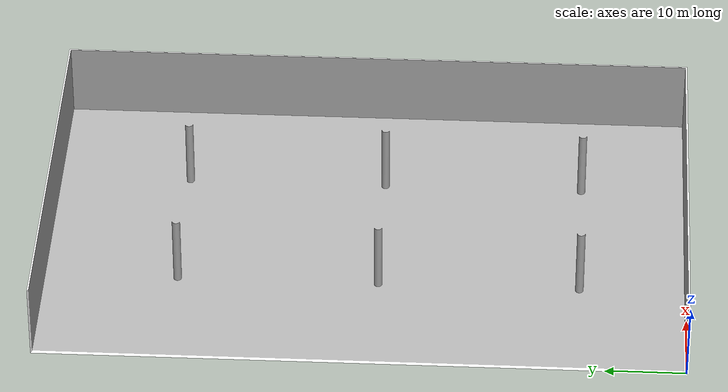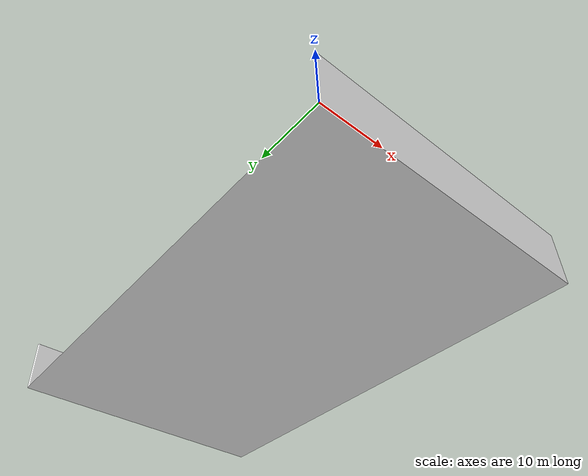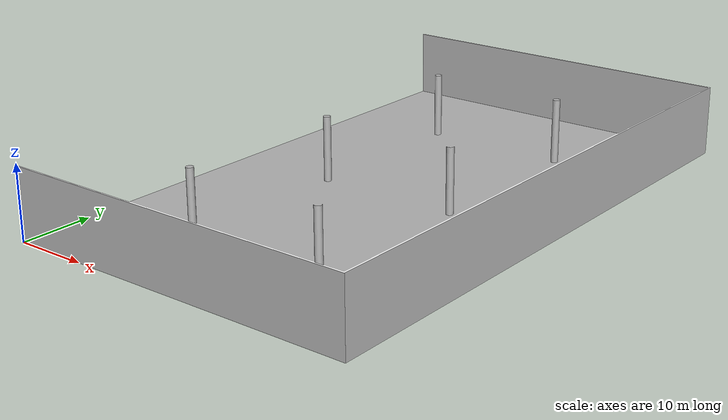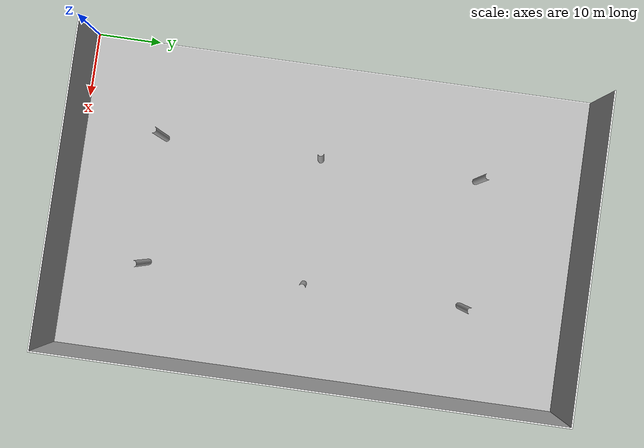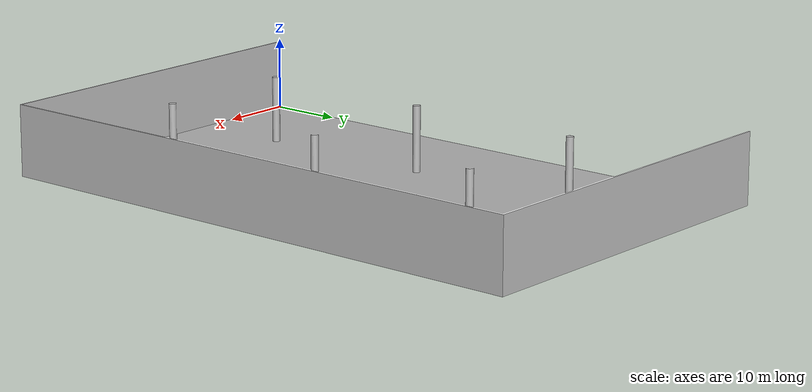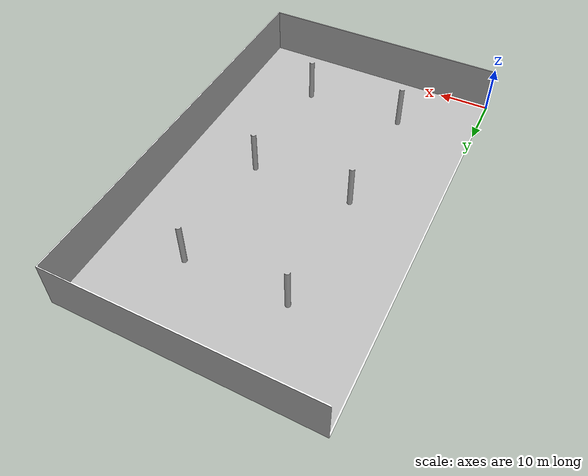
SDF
<?xml version="1.0" ?>
<sdf version="1.5">
  <model name="warehouse">
    <static>true</static>
    <link name="warehouse_link">
      <collision name="collision">
        <geometry>
          <box>
            <size>1 1 1 </size>
          </box>
        </geometry>
      </collision>
      <visual name="warehouse_mesh">
      <cast_shadows>true</cast_shadows>
        <geometry>
          <mesh>
            <uri>model://warehouse/meshes/warehouse.dae</uri>
          </mesh>
        </geometry>
      </visual>
    </link>
  </model>
</sdf>
